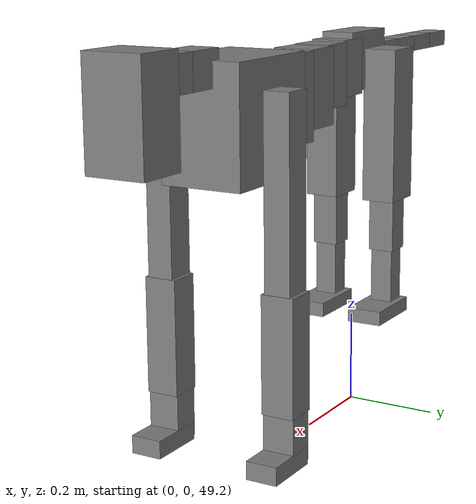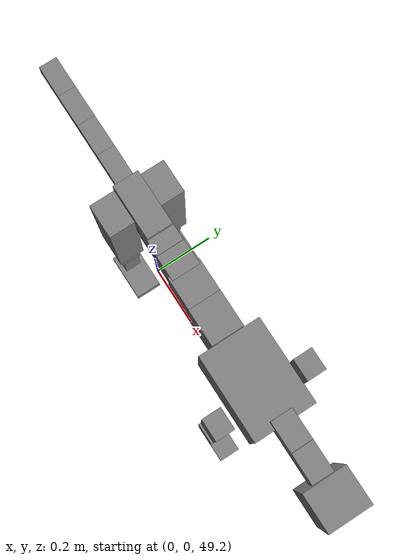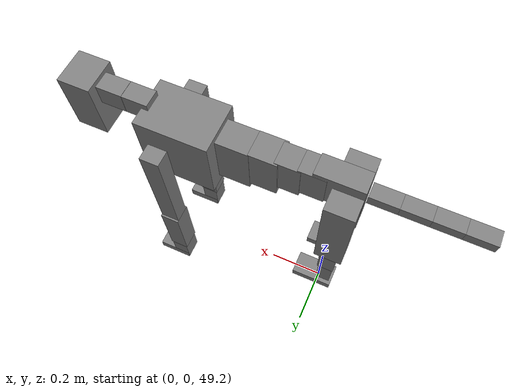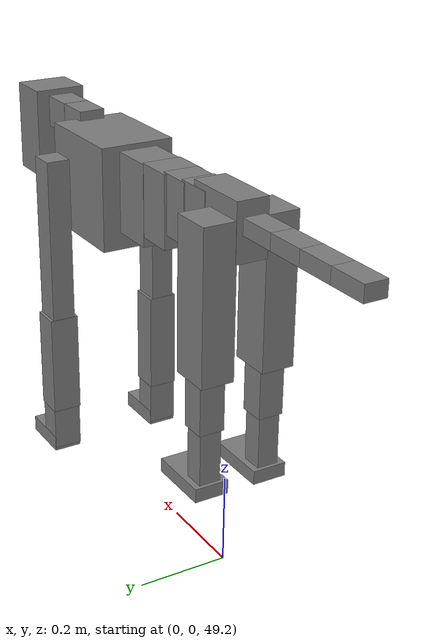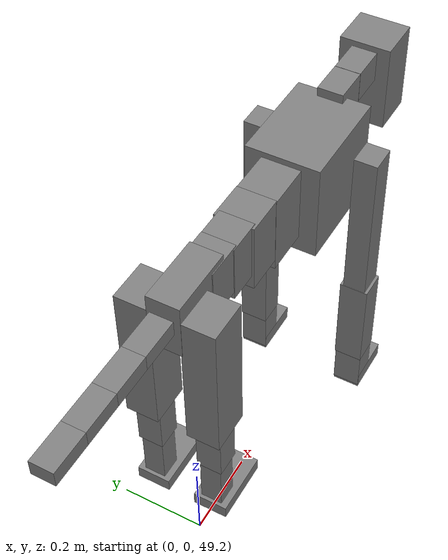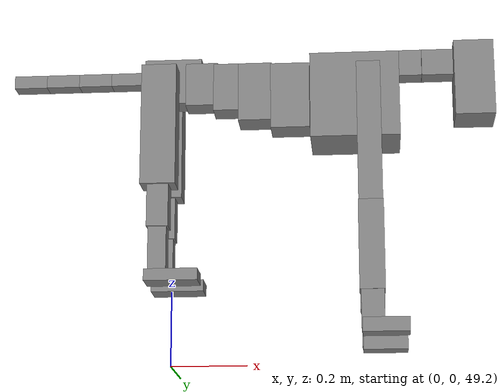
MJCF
<mujoco model="dog">

    <default>
        <joint armature="0.02" stiffness="1" damping="0.2" limited="true"/>
        <geom condim="3" friction="1 0.05 0.05" margin="0.01"/>
        <motor ctrllimited="true" ctrlrange="-1.0 1.0" forcelimited="true" gear="50"/>
    </default>

    <compiler inertiafromgeom="true" angle="radian"/>

    <option timestep="0.016" iterations="50" tolerance="1e-10" solver="Newton" jacobian="dense" cone="pyramidal"/>

    <size nconmax="20000" njmax="60000" nstack="5000000"/>
    <visual>
        <map force="0.1" zfar="30"/>
        <rgba haze="0.15 0.25 0.35 1"/>
        <quality shadowsize="2048"/>
        <global offwidth="800" offheight="800"/>
    </visual>

    <asset>
        <texture type="skybox" builtin="gradient" rgb1="0.3 0.5 0.7" rgb2="0 0 0" width="512" height="512"/>
        <texture name="texplane" type="2d" builtin="checker" rgb1=".2 .3 .4" rgb2=".1 0.15 0.2" width="512" height="512"
                 mark="cross" markrgb=".8 .8 .8"/>
        <texture name="texgeom" type="cube" builtin="flat" mark="cross" width="127" height="1278" rgb1="0.8 0.6 0.4"
                 rgb2="0.8 0.6 0.4" markrgb="1 1 1" random="0.01"/>

        <material name="matplane" reflectance="0.3" texture="texplane" texrepeat="1 1" texuniform="true"/>
        <material name="matgeom" texture="texgeom" texuniform="true" rgba="0.8 0.6 .4 1"/>
    </asset>

    <worldbody>
        <geom name="floor" pos="0 0 0" size="0 0 .25" type="plane" material="matplane" condim="3"/>

        <light directional="false" diffuse=".2 .2 .2" specular="0 0 0" pos="0 0 5" dir="0 0 -1" castshadow="false"/>
        <light mode="targetbodycom" target="torso" directional="false" diffuse=".8 .8 .8" specular="0.3 0.3 0.3"
               pos="0 0 4.0" dir="0 0 -1"/>

        <body name="root" pos="0 0 50">
            <freejoint name="root_1"/>
            <geom type="box" pos="0 0 -0.02" size="0.0774  0.0358  0.063" density="2030"/>

            <body name="spine1" pos="0.054 0 0">
                <joint name="spine1_y" axis="0 1 0" range="0 0.7" limited="true"/>
                <geom type="box" pos="0.02375 0 -0.03" size="0.04375  0.0375  0.05985" density="2030"/>

                <body name="spine2" pos="0.0612 0 0">
                    <joint name="spine2_y" axis="0 1 0" range="-0.15 0.15" limited="true"/>
                    <geom type="box" pos="0.03555  0  -0.04" size="0.04055  0.039  0.06615" density="2030"/>

                    <body name="spine3" pos="0.0730 0 0">
                        <joint name="spine3_y" axis="0 1 0" range="-0.15 0.15" limited="true"/>
                        <geom type="box" pos="0.03555  0  -0.057" size="0.04555  0.0445  0.081" density="2030"/>

                        <body name="spine4" pos="0.0780 0 0">
                            <joint name="spine4_y" axis="0 1 0" range="-0.15 0.15" limited="true"/>
                            <geom type="box" pos="0.05265  0  -0.07" size="0.05265  0.045  0.09135" density="2030"/>

                            <body name="torso" pos="0.1082 0 0">
                                <joint name="torso_y" axis="0 1 0" range="-0.15 0.15" limited="true"/>
                                <geom type="box" pos="0.11925  0  -0.085" size="0.11925  0.085  0.11745"
                                      density="2030"/>

                                <body name="neck1" pos="0.2160  0   0.0180">
                                    <joint name="neck1_y" axis="0 1 0" range="-1.2  -1" limited="true"/>
                                    <geom type="box" pos="0.0423  0  0" size="0.0423  0.03  0.036" density="2325"/>

                                    <body name="neck2" pos="0.0853  0  0">
                                        <joint name="neck2_y" axis="0 1 0" range="0.1  0" limited="true"/>
                                        <geom type="box" pos="0.0423  0  0" size="0.0423  0.03  0.036" density="2325"/>

                                        <body name="head" pos="0.0853  0  0">
                                            <joint name="head_y" axis="0 1 0" range="-0.3  -0.2" limited="true"/>
                                            <geom type="box" pos="0.0531  0  -0.055" size="0.0531  0.06  0.1044"
                                                  density="4030"/>

                                        </body>
                                    </body>
                                </body>

                                <body name="front_shoulder" pos="0.156  0   -0.0480">
                                    <joint name="front_shoulder_y" axis="0 1 0" range="-1 1.5" limited="true"/>
                                    <geom type="box" pos="0 0.13 -0.1756" size="0.0314  0.0268  0.2023" density="1158"/>
                                    <geom type="box" pos="0 -0.13 -0.1756" size="0.0314  0.0268  0.2023"
                                          density="1158"/>

                                    <body name="front_elbow" pos="0  0  -0.3512">
                                        <joint name="front_elbow_y" axis="0 1 0" range="-2 0" limited="true"/>
                                        <geom type="box" pos="0 0.13 -0.1176" size="0.0328  0.0335  0.1176"
                                              density="1081"/>
                                        <geom type="box" pos="0 -0.13 -0.1176" size="0.0328  0.0335  0.1176"
                                              density="1081"/>

                                        <body name="front_wrist" pos="0  0  -0.2353">
                                            <joint name="front_wrist_y" axis="0 1 0" range="-0.2 0" limited="true"/>
                                            <geom type="box" pos="0 0.13 -0.0433" size="0.0292  0.0325  0.0565"
                                                  density="1664"/>
                                            <geom type="box" pos="0 -0.13 -0.0433" size="0.0292  0.0325  0.0565"
                                                  density="1664"/>

                                            <body name="front_finger_end" pos="0  0  -0.0866">
                                                <joint name="front_finger_y" axis="0 1 0" range="-0.4 1"
                                                       limited="true"/>
                                                <geom type="box" pos="0.0326  0.13  -0.0034"
                                                      size="0.0597  0.0326  0.0184" density="1515"/>
                                                <geom type="box" pos="0.0326  -0.13  -0.0034"
                                                      size="0.0597  0.0326  0.0184" density="1515"/>

                                            </body>

                                        </body>
                                    </body>
                                </body>

                            </body>
                        </body>
                    </body>
                </body>
            </body>

            <body name="back_hip" pos="-0.03 0 -0.018">
                <joint name="back_hip_y" axis="0 1 0" range="-1.5 0.3" limited="true"/>
                <geom type="box" pos="0 0.07 -0.1437" size="0.0469  0.0368  0.1665" density="1154"/>
                <geom type="box" pos="0 -0.07 -0.1437" size="0.0469  0.0368  0.1665" density="1154"/>

                <body name="back_knee" pos="0  0  -0.2874">
                    <joint name="back_knee_y" axis="0 1 0" range="0 2.8" limited="true"/>
                    <geom type="box" pos="0 0.07 -0.0608" size="0.0287  0.0283  0.0763" density="1227"/>
                    <geom type="box" pos="0 -0.07 -0.0608" size="0.0287  0.0283  0.0763" density="1227"/>

                    <body name="back_ankle" pos="0  0  -0.1216">
                        <joint name="back_ankle_y" axis="0 1 0" range="-2.2 0" limited="true"/>
                        <geom type="box" pos="0 0.07 -0.0738" size="0.0242  0.0242  0.0850" density="1284"/>
                        <geom type="box" pos="0 -0.07 -0.0738" size="0.0242  0.0242  0.0850" density="1284"/>

                        <body name="back_toe_end" pos="0  0  -0.1475">
                            <joint name="back_toe_y" axis="0 1 0" range="-0.4 1" limited="true"/>
                            <geom type="box" pos="0.0385  0.07  -0.0006" size="0.0706  0.0385  0.0156" density="1515"/>
                            <geom type="box" pos="0.0385  -0.07  -0.0006" size="0.0706  0.0385  0.0156" density="1515"/>

                        </body>
                    </body>
                </body>
            </body>

            <body name="tail1" pos="-0.074 0 -0.006">
                <joint name="tail1_y" axis="0 1 0" range="-0.2 0.2" limited="true"/>
                <geom type="box" pos="-0.0536  0  0" size="0.045  0.025  0.0175" density="1587"/>

                <body name="tail2" pos="-0.09 0 0">
                    <joint name="tail2_y" axis="0 1 0" range="-0.2 0.2" limited="true"/>
                    <geom type="box" pos="-0.0536  0  0" size="0.045  0.025  0.0175" density="1587"/>

                    <body name="tail3" pos="-0.09 0 0">
                        <joint name="tail3_y" axis="0 1 0" range="-0.2 0.2" limited="true"/>
                        <geom type="box" pos="-0.0536  0  0" size="0.045  0.025  0.0175" density="1587"/>

                        <body name="tail4" pos="-0.09 0 0">
                            <joint name="tail4_y" axis="0 1 0" range="-0.2 0.2" limited="true"/>
                            <geom type="box" pos="-0.0536  0  0" size="0.045  0.025  0.0175" density="1587"/>

                        </body>
                    </body>
                </body>
            </body>
        </body>
    </worldbody>

    <actuator>
        <motor joint="spine1_y" forcerange="-150 150     "/>
        <motor joint="spine2_y" forcerange="-150 150     "/>
        <motor joint="spine3_y" forcerange="-150 150     "/>
        <motor joint="spine4_y" forcerange="-150 150     "/>
        <motor joint="torso_y" forcerange="-150 150     "/>
        <motor joint="neck1_y" forcerange="-100 100       "/>
        <motor joint="neck2_y" forcerange="-100 100       "/>
        <motor joint="head_y" forcerange="-150 150       "/>
        <motor joint="front_shoulder_y" forcerange="-159.35 119.42"/>
        <motor joint="front_elbow_y" forcerange="-193.61 150.04"/>
        <motor joint="front_wrist_y" forcerange="-121.85 137.97"/>
        <motor joint="front_finger_y" forcerange="-93.21 40.60"/>
        <motor joint="back_hip_y" forcerange="-319.55 370.72"/>
        <motor joint="back_knee_y" forcerange="-242.42 368.60"/>
        <motor joint="back_angle_y" forcerange="-179.09 107.52"/>
        <motor joint="back_toe_y" forcerange="-107.47 120.59"/>
        <motor joint="tail1_y" forcerange="-50 50     "/>
        <motor joint="tail2_y" forcerange="-50 50     "/>
        <motor joint="tail3_y" forcerange="-50 50     "/>
        <motor joint="tail4_y" forcerange="-50 50     "/>
    </actuator>
</mujoco>
